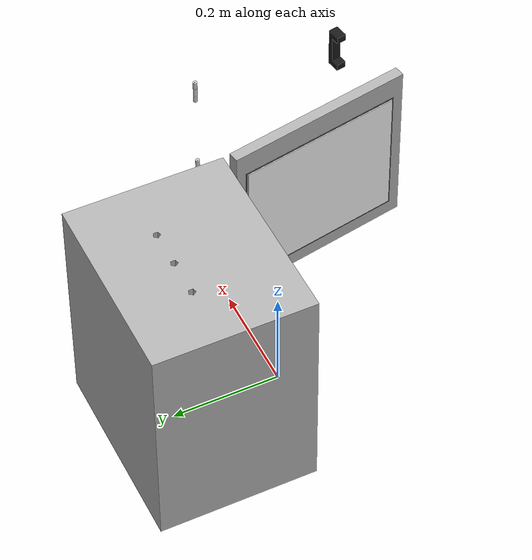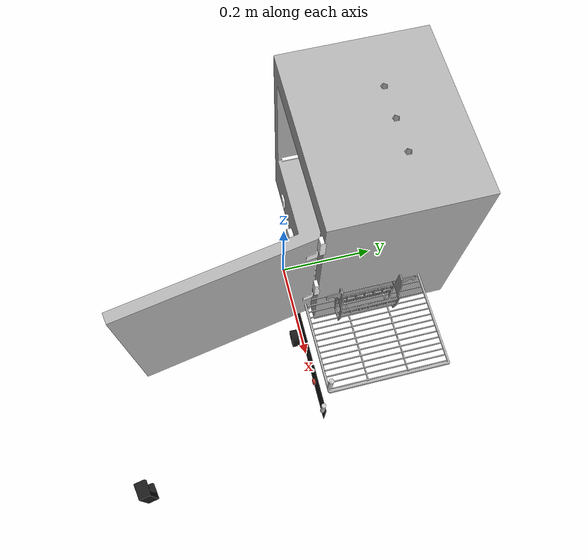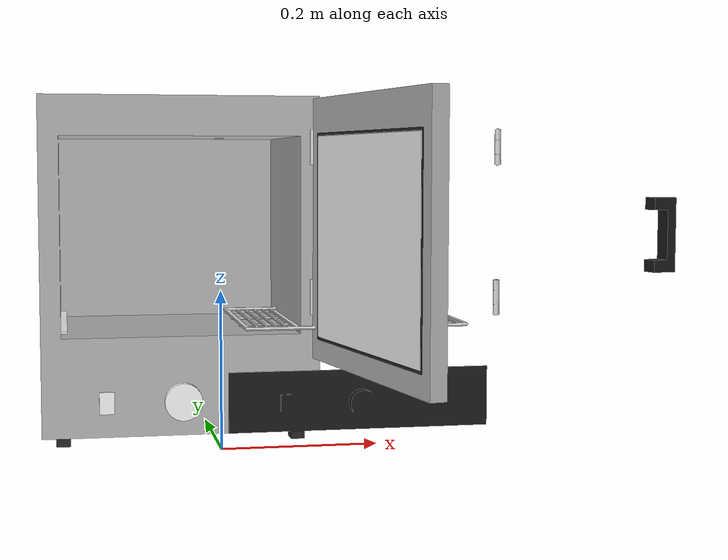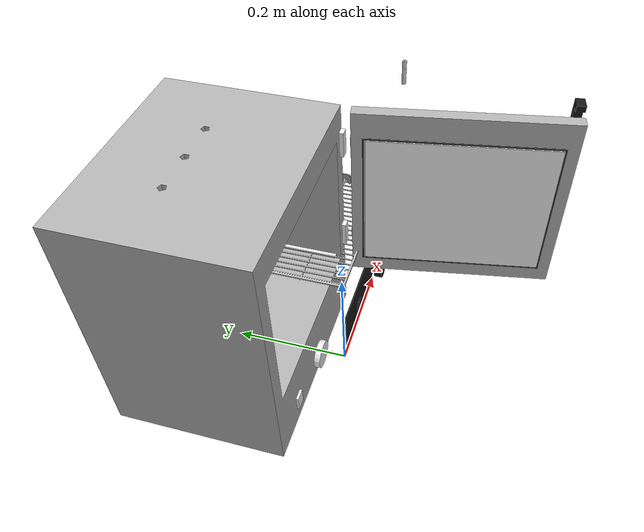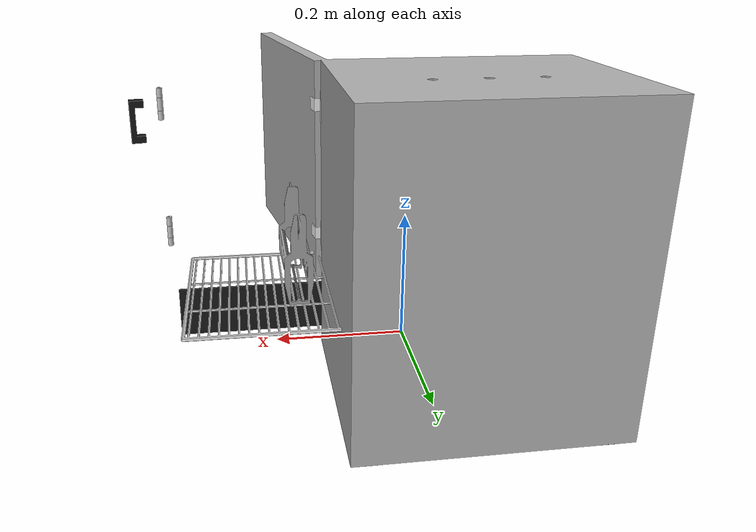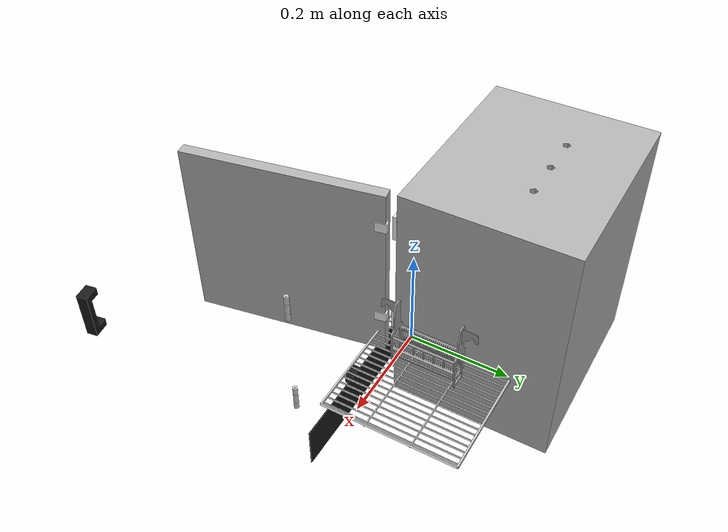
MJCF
<?xml version='1.0' encoding='utf-8'?>
<mujoco model="Quincy 10GC | static asset inspection">
  <compiler angle="radian" />
  <visual>
    <global offwidth="1000" offheight="600" />
    <headlight ambient=".4 .4 .4" diffuse=".6 .6 .6" />
  </visual>
  <asset>
    <texture type="skybox" builtin="gradient" rgb1=".92 .95 .97" rgb2=".70 .78 .84" width="512" height="3072" />
    <mesh name="quincy_0" file="meshes/quincy_0.obj" inertia="shell" />
    <mesh name="quincy_1" file="meshes/quincy_1.obj" inertia="shell" />
    <mesh name="quincy_2" file="meshes/quincy_2.obj" inertia="shell" />
    <mesh name="quincy_3" file="meshes/quincy_3.obj" inertia="shell" />
    <mesh name="quincy_4" file="meshes/quincy_4.obj" inertia="shell" />
    <mesh name="quincy_5" file="meshes/quincy_5.obj" inertia="shell" />
    <mesh name="quincy_6" file="meshes/quincy_6.obj" inertia="shell" />
  </asset>
  <worldbody>
    <geom type="mesh" mesh="quincy_0" rgba="0.701960784 0.701960784 0.701960784 1" contype="0" conaffinity="0" density="0" />
    <geom type="mesh" mesh="quincy_1" rgba="0.0980392157 0.0980392157 0.0980392157 1" contype="0" conaffinity="0" density="0" />
    <geom type="mesh" mesh="quincy_2" rgba="0.960784314 0.960784314 0.964705882 1" contype="0" conaffinity="0" density="0" />
    <geom type="mesh" mesh="quincy_3" rgba="0.768627451 0.207843137 0.152941176 1" contype="0" conaffinity="0" density="0" />
    <geom type="mesh" mesh="quincy_4" rgba="0.152941176 0.152941176 0.152941176 1" contype="0" conaffinity="0" density="0" />
    <geom type="mesh" mesh="quincy_5" rgba="0.796078431 0.796078431 0.796078431 1" contype="0" conaffinity="0" density="0" />
    <geom type="mesh" mesh="quincy_6" rgba="0.62745098 0.62745098 0.62745098 1" contype="0" conaffinity="0" density="0" />
  </worldbody>
</mujoco>
